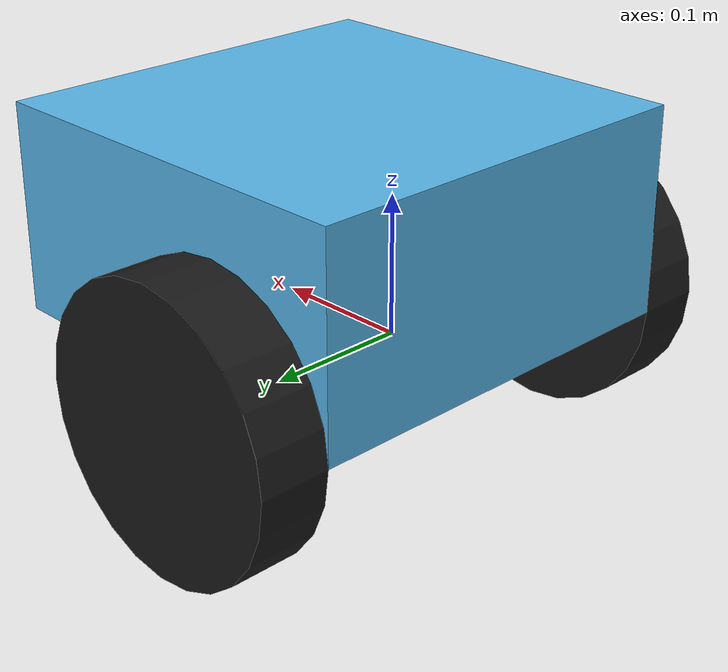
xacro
<?xml version="1.0"?>
<robot xmlns:xacro="http://www.ros.org/wiki/xacro">

  <!-- Properties -->
  <xacro:property name="chassis_mass" value="5.0"/>
  <xacro:property name="wheel_mass" value="1.0"/>
  <xacro:property name="wheel_radius" value="0.1"/>
  <xacro:property name="wheel_thickness" value="0.05"/>
  <xacro:property name="wheel_separation" value="0.35"/>

  <!-- Base Link -->
  <link name="base_link">
  </link>

  <!-- Chassis -->
  <joint name="chassis_joint" type="fixed">
    <parent link="base_link"/>
    <child link="chassis"/>
    <origin xyz="-0.1 0 0" rpy="0 0 0"/>
  </joint>

  <link name="chassis">
    <visual>
      <origin xyz="0.15 0 0.075" rpy="0 0 0"/>
      <geometry>
        <box size="0.3 0.3 0.15"/>
      </geometry>
      <material name="blue">
        <color rgba="${chassis_rgba}"/>
      </material>
    </visual>
    <collision>
      <origin xyz="0.15 0 0.075" rpy="0 0 0"/>
      <geometry>
        <box size="0.3 0.3 0.15"/>
      </geometry>
    </collision>
    <inertial>
      <origin xyz="0.15 0 0.075" rpy="0 0 0"/>
      <mass value="${chassis_mass}"/>
      <inertia ixx="${chassis_mass/12 * (0.3*0.3 + 0.15*0.15)}" ixy="0" ixz="0"
               iyy="${chassis_mass/12 * (0.3*0.3 + 0.15*0.15)}" iyz="0"
               izz="${chassis_mass/12 * (0.3*0.3 + 0.3*0.3)}"/>
    </inertial>
  </link>

  <!-- Left Wheel -->
  <joint name="left_wheel_joint" type="continuous">
    <parent link="base_link"/>
    <child link="left_wheel"/>
    <origin xyz="0 ${wheel_separation/2} 0" rpy="-${pi/2} 0 0"/>
    <axis xyz="0 0 1"/>
  </joint>

  <link name="left_wheel">
    <visual>
      <geometry>
        <cylinder radius="${wheel_radius}" length="${wheel_thickness}"/>
      </geometry>
      <material name="black">
        <color rgba="0.1 0.1 0.1 1"/>
      </material>
    </visual>
    <collision>
      <geometry>
        <cylinder radius="${wheel_radius}" length="${wheel_thickness}"/>
      </geometry>
    </collision>
    <inertial>
      <mass value="${wheel_mass}"/>
      <inertia ixx="${wheel_mass/12 * (3*wheel_radius*wheel_radius + wheel_thickness*wheel_thickness)}" ixy="0" ixz="0"
               iyy="${wheel_mass/12 * (3*wheel_radius*wheel_radius + wheel_thickness*wheel_thickness)}" iyz="0"
               izz="${wheel_mass/2 * wheel_radius*wheel_radius}"/>
    </inertial>
  </link>

  <!-- Right Wheel -->
  <joint name="right_wheel_joint" type="continuous">
    <parent link="base_link"/>
    <child link="right_wheel"/>
    <origin xyz="0 -${wheel_separation/2} 0" rpy="${pi/2} 0 0"/>
    <axis xyz="0 0 -1"/>
  </joint>

  <link name="right_wheel">
    <visual>
      <geometry>
        <cylinder radius="${wheel_radius}" length="${wheel_thickness}"/>
      </geometry>
      <material name="black"/>
    </visual>
    <collision>
      <geometry>
        <cylinder radius="${wheel_radius}" length="${wheel_thickness}"/>
      </geometry>
    </collision>
    <inertial>
      <mass value="${wheel_mass}"/>
      <inertia ixx="${wheel_mass/12 * (3*wheel_radius*wheel_radius + wheel_thickness*wheel_thickness)}" ixy="0" ixz="0"
               iyy="${wheel_mass/12 * (3*wheel_radius*wheel_radius + wheel_thickness*wheel_thickness)}" iyz="0"
               izz="${wheel_mass/2 * wheel_radius*wheel_radius}"/>
    </inertial>
  </link>

  <gazebo reference="left_wheel">
    <mu1>1.0</mu1>
    <mu2>1.0</mu2>
  </gazebo>
  <gazebo reference="right_wheel">
    <mu1>1.0</mu1>
    <mu2>1.0</mu2>
  </gazebo>

  <!-- Caster Wheel -->
  <joint name="caster_joint" type="fixed">
    <parent link="chassis"/>
    <child link="caster_wheel"/>
    <origin xyz="0.2 0 -0.05" rpy="0 0 0"/>
  </joint>

  <link name="caster_wheel">
    <visual>
      <geometry>
        <sphere radius="0.05"/>
      </geometry>
      <material name="white">
        <color rgba="1 1 1 1"/>
      </material>
    </visual>
    <collision>
      <geometry>
        <sphere radius="0.05"/>
      </geometry>
    </collision>
    <inertial>
      <mass value="0.2"/>
      <inertia ixx="${0.2 * 0.4 * 0.05 * 0.05}" ixy="0" ixz="0"
               iyy="${0.2 * 0.4 * 0.05 * 0.05}" iyz="0"
               izz="${0.2 * 0.4 * 0.05 * 0.05}"/>
    </inertial>
  </link>
  <gazebo reference="caster_wheel">
    <mu1>0.001</mu1>
    <mu2>0.001</mu2>
  </gazebo>

  <!-- ros2_control Hardware -->
  <ros2_control name="GazeboSimSystem" type="system">
    <hardware>
      <plugin>gz_ros2_control/GazeboSimSystem</plugin>
    </hardware>
    <joint name="left_wheel_joint">
      <command_interface name="velocity">
        <param name="min">-10</param>
        <param name="max">10</param>
      </command_interface>
      <state_interface name="position"/>
      <state_interface name="velocity"/>
    </joint>
    <joint name="right_wheel_joint">
      <command_interface name="velocity">
        <param name="min">-10</param>
        <param name="max">10</param>
      </command_interface>
      <state_interface name="position"/>
      <state_interface name="velocity"/>
    </joint>
  </ros2_control>

  <!-- Gazebo Ground Truth Odometry Publisher (50Hz) -->
  <gazebo>
    <plugin filename="gz-sim-odometry-publisher-system" name="gz::sim::systems::OdometryPublisher">
      <odom_frame>${robot_name}/odom</odom_frame>
      <robot_base_frame>${robot_name}/base_link</robot_base_frame>
      <odom_topic>/model/${robot_name}/odometry</odom_topic>
      <tf_topic>/model/${robot_name}/tf</tf_topic>
      <dimensions>3</dimensions>
      <odom_publish_frequency>50</odom_publish_frequency>
    </plugin>
  </gazebo>

</robot>
